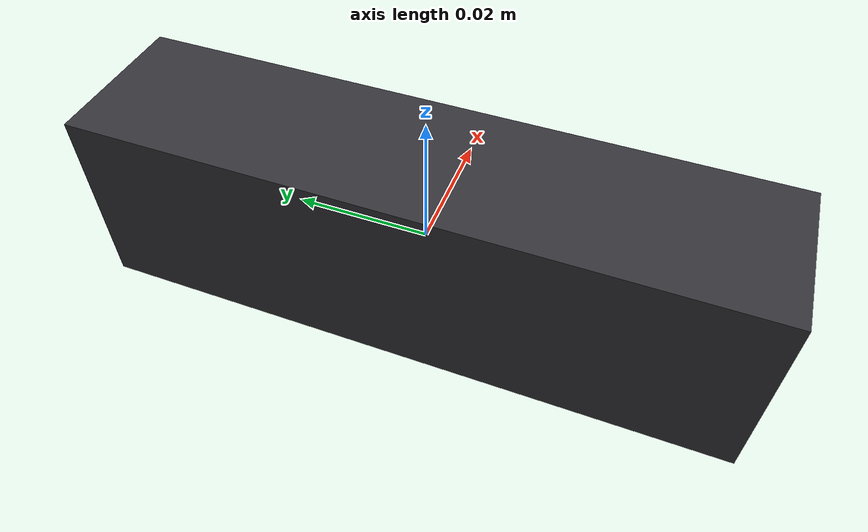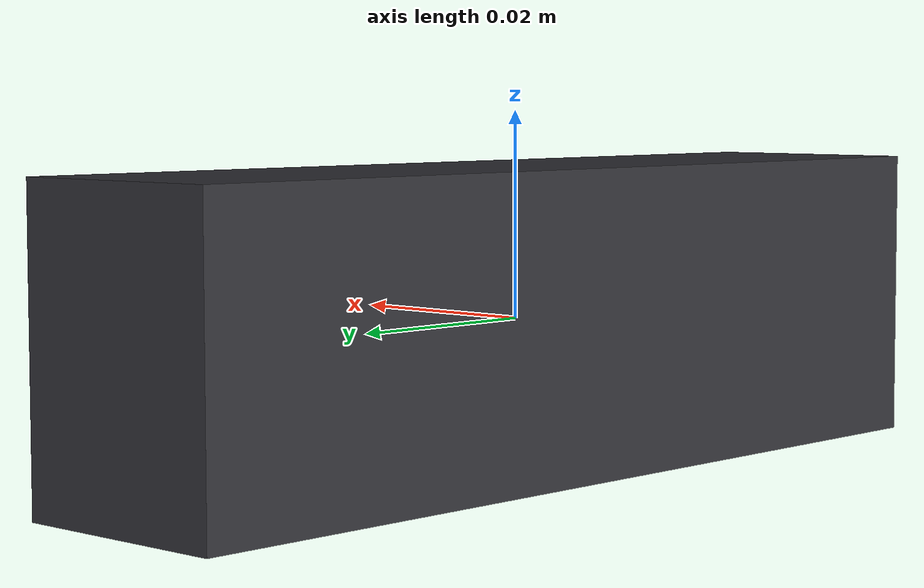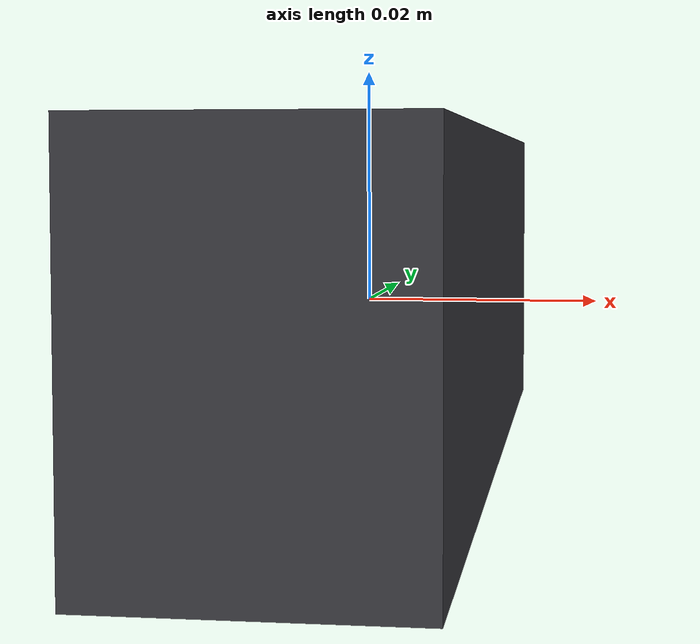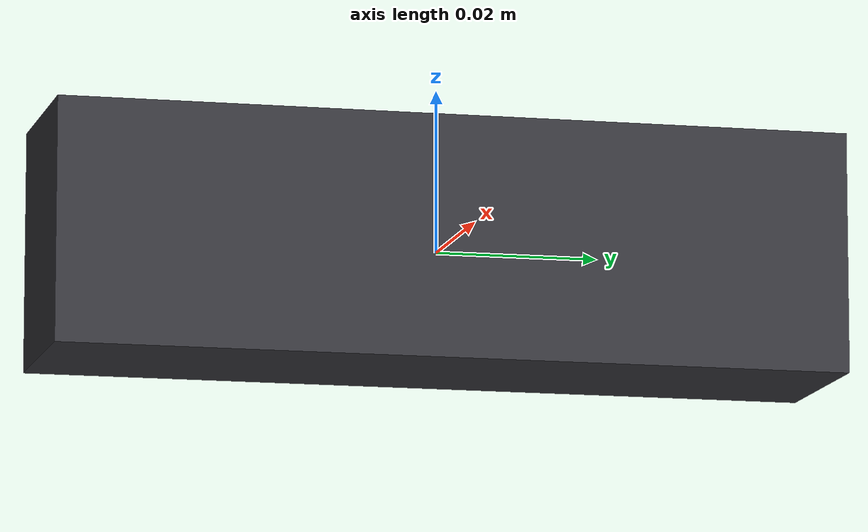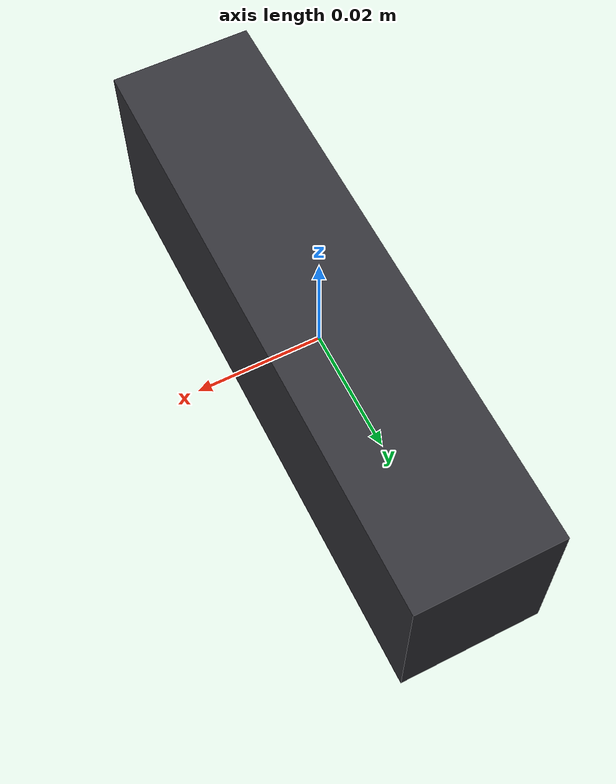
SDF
<?xml version="1.0" encoding="UTF-8"?>
<!-- Generated from includes/gz/oakd_s2. Mount on base_link: 0.120000 0.030000 0.242000 0.000000 0.445059 0.000000 (pitch 25.5 deg down). Model name stays OakD-Lite so PX4 x500_depth can include it. -->
<sdf version="1.9">
  <model name="OakD-Lite">
    <pose>0 0 0 0 0 0</pose>
    <self_collide>false</self_collide>
    <static>false</static>
    <link name="camera_link">
      <inertial>
        <pose>0 0 0 0 0 0</pose>
        <mass>0.091</mass>
        <inertia>
          <ixx>7.795097916666666e-05</ixx>
          <ixy>0</ixy>
          <ixz>0</ixz>
          <iyy>1.057617166666667e-05</iyy>
          <iyz>0</iyz>
          <izz>7.532835916666667e-05</izz>
        </inertia>
      </inertial>
      <visual name="housing">
        <pose>0 0 0 0 0 0</pose>
        <geometry>
          <box>
            <size>0.0229 0.097 0.0295</size>
          </box>
        </geometry>
        <material>
          <ambient>0.12 0.12 0.13 1</ambient>
          <diffuse>0.2 0.2 0.22 1</diffuse>
        </material>
      </visual>
      <collision name="housing">
        <pose>0 0 0 0 0 0</pose>
        <geometry>
          <box>
            <size>0.0229 0.097 0.0295</size>
          </box>
        </geometry>
      </collision>
      <sensor name="OV9282_left" type="camera">
        <pose>0.011450 0.037500 0.000000 0.000000 0.000000 0.000000</pose>
        <gz_frame_id>stereo_left_camera_optical_frame</gz_frame_id>
        <topic>/camera/stereo/left/image_raw</topic>
        <always_on>true</always_on>
        <update_rate>10</update_rate>
        <visualize>true</visualize>
        <camera name="OV9282_left">
          <horizontal_fov>1.333487845201744</horizontal_fov>
          <image>
            <width>320</width>
            <height>200</height>
            <format>L8</format>
          </image>
          <clip>
            <near>0.2</near>
            <far>30</far>
          </clip>
          <noise>
            <type>gaussian</type>
            <mean>0</mean>
            <stddev>0.007</stddev>
          </noise>
          <distortion>
            <k1>0</k1>
            <k2>0</k2>
            <k3>0</k3>
            <p1>0</p1>
            <p2>0</p2>
          </distortion>
          <lens>
            <type>gnomonical</type>
            <scale_to_hfov>false</scale_to_hfov>
            <intrinsics>
              <fx>203.3119558681072</fx>
              <fy>203.0400182383875</fy>
              <cx>152.8884306963902</cx>
              <cy>102.2648785872771</cy>
              <s>0</s>
            </intrinsics>
            <projection>
              <p_fx>203.3119558681072</p_fx>
              <p_fy>203.0400182383875</p_fy>
              <p_cx>152.8884306963902</p_cx>
              <p_cy>102.2648785872771</p_cy>
              <tx>0</tx>
              <ty>0</ty>
            </projection>
          </lens>
          <optical_frame_id>stereo_left_camera_optical_frame</optical_frame_id>
          <camera_info_topic>/camera/stereo/left/camera_info</camera_info_topic>
        </camera>
      </sensor>
      <sensor name="OV9282_right" type="camera">
        <pose>0.011450 -0.037500 0.000000 0.000000 0.000000 0.000000</pose>
        <gz_frame_id>stereo_right_camera_optical_frame</gz_frame_id>
        <topic>/camera/stereo/right/image_raw</topic>
        <always_on>true</always_on>
        <update_rate>10</update_rate>
        <visualize>true</visualize>
        <camera name="OV9282_right">
          <horizontal_fov>1.333487845201744</horizontal_fov>
          <image>
            <width>320</width>
            <height>200</height>
            <format>L8</format>
          </image>
          <clip>
            <near>0.2</near>
            <far>30</far>
          </clip>
          <noise>
            <type>gaussian</type>
            <mean>0</mean>
            <stddev>0.007</stddev>
          </noise>
          <distortion>
            <k1>0</k1>
            <k2>0</k2>
            <k3>0</k3>
            <p1>0</p1>
            <p2>0</p2>
          </distortion>
          <lens>
            <type>gnomonical</type>
            <scale_to_hfov>false</scale_to_hfov>
            <intrinsics>
              <fx>203.3119558681072</fx>
              <fy>203.0400182383875</fy>
              <cx>152.8884306963902</cx>
              <cy>102.2648785872771</cy>
              <s>0</s>
            </intrinsics>
            <projection>
              <p_fx>203.3119558681072</p_fx>
              <p_fy>203.0400182383875</p_fy>
              <p_cx>152.8884306963902</p_cx>
              <p_cy>102.2648785872771</p_cy>
              <tx>-15.24839669010804</tx>
              <ty>0</ty>
            </projection>
          </lens>
          <optical_frame_id>stereo_right_camera_optical_frame</optical_frame_id>
          <camera_info_topic>/camera/stereo/right/camera_info</camera_info_topic>
        </camera>
      </sensor>
      <sensor name="BNO086" type="imu">
        <pose>0.000000 0.000000 0.000000 0.000000 0.000000 0.000000</pose>
        <gz_frame_id>imu_link</gz_frame_id>
        <topic>/imu</topic>
        <always_on>true</always_on>
        <update_rate>100</update_rate>
        <imu>
          <orientation_reference_frame>
            <localization>ENU</localization>
          </orientation_reference_frame>
          <angular_velocity>
          <x>
            <noise type="gaussian">
              <mean>0</mean>
              <stddev>0.0009873073195907479</stddev>
              <bias_mean>0</bias_mean>
              <bias_stddev>0.0001</bias_stddev>
            </noise>
          </x>
          <y>
            <noise type="gaussian">
              <mean>0</mean>
              <stddev>0.0009873073195907479</stddev>
              <bias_mean>0</bias_mean>
              <bias_stddev>0.0001</bias_stddev>
            </noise>
          </y>
          <z>
            <noise type="gaussian">
              <mean>0</mean>
              <stddev>0.0009873073195907479</stddev>
              <bias_mean>0</bias_mean>
              <bias_stddev>0.0001</bias_stddev>
            </noise>
          </z>
          </angular_velocity>
          <linear_acceleration>
          <x>
            <noise type="gaussian">
              <mean>0</mean>
              <stddev>0.01109495794515689</stddev>
              <bias_mean>0</bias_mean>
              <bias_stddev>0.001</bias_stddev>
            </noise>
          </x>
          <y>
            <noise type="gaussian">
              <mean>0</mean>
              <stddev>0.01109495794515689</stddev>
              <bias_mean>0</bias_mean>
              <bias_stddev>0.001</bias_stddev>
            </noise>
          </y>
          <z>
            <noise type="gaussian">
              <mean>0</mean>
              <stddev>0.01109495794515689</stddev>
              <bias_mean>0</bias_mean>
              <bias_stddev>0.001</bias_stddev>
            </noise>
          </z>
          </linear_acceleration>
        </imu>
      </sensor>
      <gravity>true</gravity>
    </link>
  </model>
</sdf>
